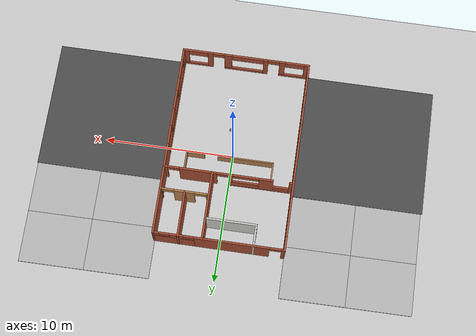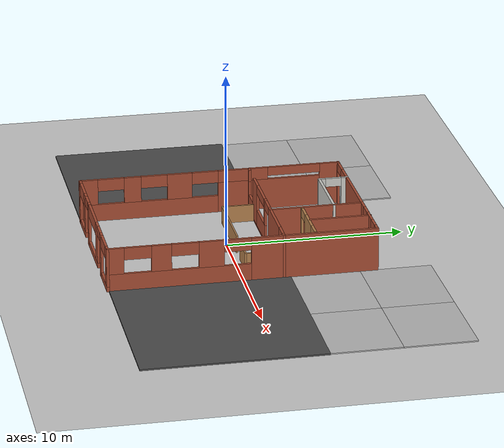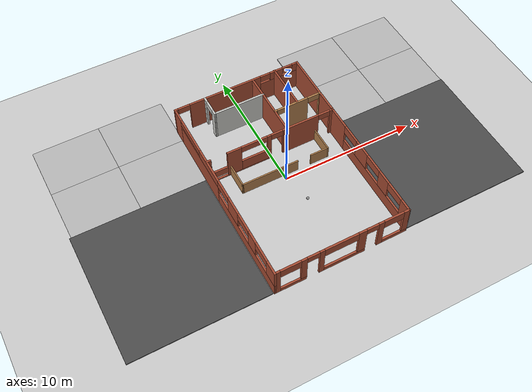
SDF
<sdf version="1.6">
 <world name="default">
  <model name="ground_plane">
   <static>1</static>
   <link name="link">
    <collision name="collision">
     <geometry><plane><normal>0 0 1</normal><size>100 100</size></plane></geometry>
     <surface><friction><ode><mu>100</mu><mu2>50</mu2></ode></friction></surface>
    </collision>
    <visual name="visual">
     <cast_shadows>0</cast_shadows>
     <geometry><plane><normal>0 0 1</normal><size>100 100</size></plane></geometry>
     <material>
      <script><uri>file://media/materials/scripts/gazebo.material</uri><name>Gazebo/Grey</name></script>
     </material>
    </visual>
   </link>
  </model>
  <light name="sun" type="directional">
   <pose>0 0 10 0 -0 0</pose>
   <diffuse>0.8 0.8 0.8 1</diffuse>
   <specular>0.2 0.2 0.2 1</specular>
   <attenuation>
    <range>1000</range>
    <constant>0.9</constant>
    <linear>0.01</linear>
    <quadratic>0.001</quadratic>
   </attenuation>
   <direction>-0.5 0.1 -0.9</direction>
  </light>
  <gravity>0 0 -9.8</gravity>
  <magnetic_field>6e-06 2.3e-05 -4.2e-05</magnetic_field>
  <atmosphere type="adiabatic"/>
  <physics name="default_physics" default="0" type="ode">
   <max_step_size>0.001</max_step_size>
   <real_time_factor>1</real_time_factor>
   <real_time_update_rate>1000</real_time_update_rate>
  </physics>
  <scene><ambient>0.4 0.4 0.4 1</ambient><background>0.7 0.7 0.7 1</background><shadows>1</shadows></scene>
  <spherical_coordinates>
   <surface_model>EARTH_WGS84</surface_model>
   <latitude_deg>0</latitude_deg>
   <longitude_deg>0</longitude_deg>
   <elevation>0</elevation>
   <heading_deg>0</heading_deg>
  </spherical_coordinates>
  <model name="pizzeria">
   <link name="Wall_1">
    <pose>-0.001821 7.41141 0 0 -0 1.3e-05</pose>
    <visual name="Wall_1_Visual_0">
     <pose>-4.85296 0 1.25 0 -0 0</pose>
     <geometry><box><size>0.294087 0.15 2.5</size></box></geometry>
     <material>
      <script><uri>file://media/materials/scripts/gazebo.material</uri><name>Gazebo/Bricks</name></script>
      <ambient>1 1 1 1</ambient>
     </material>
     <meta><layer>0</layer></meta>
    </visual>
    <collision name="Wall_1_Collision_0">
     <geometry><box><size>0.294087 0.15 2.5</size></box></geometry>
     <pose>-4.85296 0 1.25 0 -0 0</pose>
    </collision>
    <visual name="Wall_1_Visual_1">
     <pose>-0.985461 0 1.25 0 -0 0</pose>
     <geometry><box><size>5.6409 0.15 2.5</size></box></geometry>
     <material>
      <script><uri>file://media/materials/scripts/gazebo.material</uri><name>Gazebo/Bricks</name></script>
      <ambient>1 1 1 1</ambient>
     </material>
     <meta><layer>0</layer></meta>
    </visual>
    <collision name="Wall_1_Collision_1">
     <geometry><box><size>5.6409 0.15 2.5</size></box></geometry>
     <pose>-0.985461 0 1.25 0 -0 0</pose>
    </collision>
    <visual name="Wall_1_Visual_2">
     <pose>3.4175 0 0.9 0 -0 0</pose>
     <geometry><box><size>3.16501 0.15 1.8</size></box></geometry>
     <material>
      <script><uri>file://media/materials/scripts/gazebo.material</uri><name>Gazebo/Bricks</name></script>
      <ambient>1 1 1 1</ambient>
     </material>
     <meta><layer>0</layer></meta>
    </visual>
    <collision name="Wall_1_Collision_2">
     <geometry><box><size>3.16501 0.15 1.8</size></box></geometry>
     <pose>3.4175 0 0.9 0 -0 0</pose>
    </collision>
    <visual name="Wall_1_Visual_3">
     <pose>3.14938 0 2.15 0 -0 0</pose>
     <geometry><box><size>1.02879 0.15 0.7</size></box></geometry>
     <material>
      <script><uri>file://media/materials/scripts/gazebo.material</uri><name>Gazebo/Bricks</name></script>
      <ambient>1 1 1 1</ambient>
     </material>
     <meta><layer>0</layer></meta>
    </visual>
    <collision name="Wall_1_Collision_3">
     <geometry><box><size>1.02879 0.15 0.7</size></box></geometry>
     <pose>3.14938 0 2.15 0 -0 0</pose>
    </collision>
    <visual name="Wall_1_Visual_4">
     <pose>4.73189 0 2.15 0 -0 0</pose>
     <geometry><box><size>0.536223 0.15 0.7</size></box></geometry>
     <material>
      <script><uri>file://media/materials/scripts/gazebo.material</uri><name>Gazebo/Bricks</name></script>
      <ambient>1 1 1 1</ambient>
     </material>
     <meta><layer>0</layer></meta>
    </visual>
    <collision name="Wall_1_Collision_4">
     <geometry><box><size>0.536223 0.15 0.7</size></box></geometry>
     <pose>4.73189 0 2.15 0 -0 0</pose>
    </collision>
    <visual name="Wall_1_Visual_5">
     <pose>2.23499 0 2.25 0 -0 0</pose>
     <geometry><box><size>0.8 0.15 0.5</size></box></geometry>
     <material>
      <script><uri>file://media/materials/scripts/gazebo.material</uri><name>Gazebo/Bricks</name></script>
      <ambient>1 1 1 1</ambient>
     </material>
     <meta><layer>0</layer></meta>
    </visual>
    <collision name="Wall_1_Collision_5">
     <geometry><box><size>0.8 0.15 0.5</size></box></geometry>
     <pose>2.23499 0 2.25 0 -0 0</pose>
    </collision>
    <visual name="Wall_1_Visual_6">
     <pose>4.06378 0 2.25 0 -0 0</pose>
     <geometry><box><size>0.8 0.15 0.5</size></box></geometry>
     <material>
      <script><uri>file://media/materials/scripts/gazebo.material</uri><name>Gazebo/Bricks</name></script>
      <ambient>1 1 1 1</ambient>
     </material>
     <meta><layer>0</layer></meta>
    </visual>
    <collision name="Wall_1_Collision_6">
     <geometry><box><size>0.8 0.15 0.5</size></box></geometry>
     <pose>4.06378 0 2.25 0 -0 0</pose>
    </collision>
    <visual name="Wall_1_Visual_7">
     <pose>-4.25591 0 2.25 0 -0 0</pose>
     <geometry><box><size>0.9 0.15 0.5</size></box></geometry>
     <material>
      <script><uri>file://media/materials/scripts/gazebo.material</uri><name>Gazebo/Bricks</name></script>
      <ambient>1 1 1 1</ambient>
     </material>
     <meta><layer>0</layer></meta>
    </visual>
    <collision name="Wall_1_Collision_7">
     <geometry><box><size>0.9 0.15 0.5</size></box></geometry>
     <pose>-4.25591 0 2.25 0 -0 0</pose>
    </collision>
   </link>
   <link name="Wall_12">
    <pose>3.08232 4.00311 0 0 -0 0</pose>
    <visual name="Wall_12_Visual_0">
     <pose>-1.76453 0 1.25 0 -0 0</pose>
     <geometry><box><size>0.220946 0.15 2.5</size></box></geometry>
     <material>
      <script><uri>file://media/materials/scripts/gazebo.material</uri><name>Gazebo/Wood</name></script>
      <ambient>1 1 1 1</ambient>
     </material>
     <meta><layer>0</layer></meta>
    </visual>
    <collision name="Wall_12_Collision_0">
     <geometry><box><size>0.220946 0.15 2.5</size></box></geometry>
     <pose>-1.76453 0 1.25 0 -0 0</pose>
    </collision>
    <visual name="Wall_12_Visual_1">
     <pose>0.028771 0 1.25 0 -0 0</pose>
     <geometry><box><size>1.56565 0.15 2.5</size></box></geometry>
     <material>
      <script><uri>file://media/materials/scripts/gazebo.material</uri><name>Gazebo/Wood</name></script>
      <ambient>1 1 1 1</ambient>
     </material>
     <meta><layer>0</layer></meta>
    </visual>
    <collision name="Wall_12_Collision_1">
     <geometry><box><size>1.56565 0.15 2.5</size></box></geometry>
     <pose>0.028771 0 1.25 0 -0 0</pose>
    </collision>
    <visual name="Wall_12_Visual_2">
     <pose>1.7933 0 1.25 0 -0 0</pose>
     <geometry><box><size>0.163405 0.15 2.5</size></box></geometry>
     <material>
      <script><uri>file://media/materials/scripts/gazebo.material</uri><name>Gazebo/Wood</name></script>
      <ambient>1 1 1 1</ambient>
     </material>
     <meta><layer>0</layer></meta>
    </visual>
    <collision name="Wall_12_Collision_2">
     <geometry><box><size>0.163405 0.15 2.5</size></box></geometry>
     <pose>1.7933 0 1.25 0 -0 0</pose>
    </collision>
    <visual name="Wall_12_Visual_3">
     <pose>-1.20405 0 2.25 0 -0 0</pose>
     <geometry><box><size>0.9 0.15 0.5</size></box></geometry>
     <material>
      <script><uri>file://media/materials/scripts/gazebo.material</uri><name>Gazebo/Wood</name></script>
      <ambient>1 1 1 1</ambient>
     </material>
     <meta><layer>0</layer></meta>
    </visual>
    <collision name="Wall_12_Collision_3">
     <geometry><box><size>0.9 0.15 0.5</size></box></geometry>
     <pose>-1.20405 0 2.25 0 -0 0</pose>
    </collision>
    <visual name="Wall_12_Visual_4">
     <pose>1.2616 0 2.25 0 -0 0</pose>
     <geometry><box><size>0.9 0.15 0.5</size></box></geometry>
     <material>
      <script><uri>file://media/materials/scripts/gazebo.material</uri><name>Gazebo/Wood</name></script>
      <ambient>1 1 1 1</ambient>
     </material>
     <meta><layer>0</layer></meta>
    </visual>
    <collision name="Wall_12_Collision_4">
     <geometry><box><size>0.9 0.15 0.5</size></box></geometry>
     <pose>1.2616 0 2.25 0 -0 0</pose>
    </collision>
   </link>
   <link name="Wall_14">
    <collision name="Wall_14_Collision">
     <geometry><box><size>3.5 0.15 2.5</size></box></geometry>
     <pose>0 0 1.25 0 -0 0</pose>
    </collision>
    <visual name="Wall_14_Visual">
     <pose>0 0 1.25 0 -0 0</pose>
     <geometry><box><size>3.5 0.15 2.5</size></box></geometry>
     <material>
      <script><uri>file://media/materials/scripts/gazebo.material</uri><name>Gazebo/Bricks</name></script>
      <ambient>1 1 1 1</ambient>
     </material>
     <meta><layer>0</layer></meta>
    </visual>
    <pose>3.05997 5.76366 0 0 -0 1.5708</pose>
   </link>
   <link name="Wall_18">
    <collision name="Wall_18_Collision">
     <geometry><box><size>1.95 0.1 1</size></box></geometry>
     <pose>0 0 0.5 0 -0 0</pose>
    </collision>
    <visual name="Wall_18_Visual">
     <pose>0 0 0.5 0 -0 0</pose>
     <geometry><box><size>1.95 0.1 1</size></box></geometry>
     <material>
      <script><uri>file://media/materials/scripts/gazebo.material</uri><name>Gazebo/Wood</name></script>
      <ambient>1 1 1 1</ambient>
     </material>
     <meta><layer>0</layer></meta>
    </visual>
    <pose>-3.20183 1.30439 0 0 0 -1.5708</pose>
   </link>
   <link name="Wall_19">
    <collision name="Wall_19_Collision">
     <geometry><box><size>4.377 0.1 1</size></box></geometry>
     <pose>0 0 0.5 0 -0 0</pose>
    </collision>
    <visual name="Wall_19_Visual">
     <pose>0 0 0.5 0 -0 0</pose>
     <geometry><box><size>4.377 0.1 1</size></box></geometry>
     <material>
      <script><uri>file://media/materials/scripts/gazebo.material</uri><name>Gazebo/Wood</name></script>
      <ambient>1 1 1 1</ambient>
     </material>
     <meta><layer>0</layer></meta>
    </visual>
    <pose>-1.06333 0.38243 0 0 -0 0.001422</pose>
   </link>
   <link name="Wall_2">
    <pose>4.92317 -0.013529 0 0 0 -1.5708</pose>
    <visual name="Wall_2_Visual_0">
     <pose>-3.97755 0 1.25 0 -0 0</pose>
     <geometry><box><size>7.04491 0.15 2.5</size></box></geometry>
     <material>
      <script><uri>file://media/materials/scripts/gazebo.material</uri><name>Gazebo/Bricks</name></script>
      <ambient>1 1 1 1</ambient>
     </material>
     <meta><layer>0</layer></meta>
    </visual>
    <collision name="Wall_2_Collision_0">
     <geometry><box><size>7.04491 0.15 2.5</size></box></geometry>
     <pose>-3.97755 0 1.25 0 -0 0</pose>
    </collision>
    <visual name="Wall_2_Visual_1">
     <pose>3.52245 0 0.5 0 -0 0</pose>
     <geometry><box><size>7.95509 0.15 1</size></box></geometry>
     <material>
      <script><uri>file://media/materials/scripts/gazebo.material</uri><name>Gazebo/Bricks</name></script>
      <ambient>1 1 1 1</ambient>
     </material>
     <meta><layer>0</layer></meta>
    </visual>
    <collision name="Wall_2_Collision_1">
     <geometry><box><size>7.95509 0.15 1</size></box></geometry>
     <pose>3.52245 0 0.5 0 -0 0</pose>
    </collision>
    <visual name="Wall_2_Visual_2">
     <pose>1.7395 0 1.75 0 -0 0</pose>
     <geometry><box><size>1.38918 0.15 1.5</size></box></geometry>
     <material>
      <script><uri>file://media/materials/scripts/gazebo.material</uri><name>Gazebo/Bricks</name></script>
      <ambient>1 1 1 1</ambient>
     </material>
     <meta><layer>0</layer></meta>
    </visual>
    <collision name="Wall_2_Collision_2">
     <geometry><box><size>1.38918 0.15 1.5</size></box></geometry>
     <pose>1.7395 0 1.75 0 -0 0</pose>
    </collision>
    <visual name="Wall_2_Visual_3">
     <pose>4.48422 0 1.75 0 -0 0</pose>
     <geometry><box><size>1.10026 0.15 1.5</size></box></geometry>
     <material>
      <script><uri>file://media/materials/scripts/gazebo.material</uri><name>Gazebo/Bricks</name></script>
      <ambient>1 1 1 1</ambient>
     </material>
     <meta><layer>0</layer></meta>
    </visual>
    <collision name="Wall_2_Collision_3">
     <geometry><box><size>1.10026 0.15 1.5</size></box></geometry>
     <pose>4.48422 0 1.75 0 -0 0</pose>
    </collision>
    <visual name="Wall_2_Visual_4">
     <pose>7.01717 0 1.75 0 -0 0</pose>
     <geometry><box><size>0.965653 0.15 1.5</size></box></geometry>
     <material>
      <script><uri>file://media/materials/scripts/gazebo.material</uri><name>Gazebo/Bricks</name></script>
      <ambient>1 1 1 1</ambient>
     </material>
     <meta><layer>0</layer></meta>
    </visual>
    <collision name="Wall_2_Collision_4">
     <geometry><box><size>0.965653 0.15 1.5</size></box></geometry>
     <pose>7.01717 0 1.75 0 -0 0</pose>
    </collision>
    <visual name="Wall_2_Visual_5">
     <pose>0.294909 0 2.15 0 -0 0</pose>
     <geometry><box><size>1.5 0.15 0.7</size></box></geometry>
     <material>
      <script><uri>file://media/materials/scripts/gazebo.material</uri><name>Gazebo/Bricks</name></script>
      <ambient>1 1 1 1</ambient>
     </material>
     <meta><layer>0</layer></meta>
    </visual>
    <collision name="Wall_2_Collision_5">
     <geometry><box><size>1.5 0.15 0.7</size></box></geometry>
     <pose>0.294909 0 2.15 0 -0 0</pose>
    </collision>
    <visual name="Wall_2_Visual_6">
     <pose>3.18409 0 2.15 0 -0 0</pose>
     <geometry><box><size>1.5 0.15 0.7</size></box></geometry>
     <material>
      <script><uri>file://media/materials/scripts/gazebo.material</uri><name>Gazebo/Bricks</name></script>
      <ambient>1 1 1 1</ambient>
     </material>
     <meta><layer>0</layer></meta>
    </visual>
    <collision name="Wall_2_Collision_6">
     <geometry><box><size>1.5 0.15 0.7</size></box></geometry>
     <pose>3.18409 0 2.15 0 -0 0</pose>
    </collision>
    <visual name="Wall_2_Visual_7">
     <pose>5.78435 0 2.15 0 -0 0</pose>
     <geometry><box><size>1.5 0.15 0.7</size></box></geometry>
     <material>
      <script><uri>file://media/materials/scripts/gazebo.material</uri><name>Gazebo/Bricks</name></script>
      <ambient>1 1 1 1</ambient>
     </material>
     <meta><layer>0</layer></meta>
    </visual>
    <collision name="Wall_2_Collision_7">
     <geometry><box><size>1.5 0.15 0.7</size></box></geometry>
     <pose>5.78435 0 2.15 0 -0 0</pose>
    </collision>
   </link>
   <link name="Wall_25">
    <collision name="Wall_25_Collision">
     <geometry><box><size>1.45032 0.1 1</size></box></geometry>
     <pose>0 0 0.5 0 -0 0</pose>
    </collision>
    <visual name="Wall_25_Visual">
     <pose>0 0 0.5 0 -0 0</pose>
     <geometry><box><size>1.45032 0.1 1</size></box></geometry>
     <material>
      <script><uri>file://media/materials/scripts/gazebo.material</uri><name>Gazebo/Wood</name></script>
      <ambient>1 1 1 1</ambient>
     </material>
     <meta><layer>0</layer></meta>
    </visual>
    <pose>2.85017 0.385472 0 0 -0 0</pose>
   </link>
   <link name="Wall_26">
    <collision name="Wall_26_Collision">
     <geometry><box><size>1.95008 0.1 1</size></box></geometry>
     <pose>0 0 0.5 0 -0 0</pose>
    </collision>
    <visual name="Wall_26_Visual">
     <pose>0 0 0.5 0 -0 0</pose>
     <geometry><box><size>1.95008 0.1 1</size></box></geometry>
     <material>
      <script><uri>file://media/materials/scripts/gazebo.material</uri><name>Gazebo/Wood</name></script>
      <ambient>1 1 1 1</ambient>
     </material>
     <meta><layer>0</layer></meta>
    </visual>
    <pose>3.52517 1.31047 0 0 -0 1.5708</pose>
   </link>
   <link name="Wall_33">
    <pose>-2.60257 6.61524 0 0 0 -1.5708</pose>
    <visual name="Wall_33_Visual_0">
     <pose>-0.662657 0 1.25 0 -0 0</pose>
     <geometry><box><size>0.424686 0.15 2.5</size></box></geometry>
     <material>
      <script><uri>file://media/materials/scripts/gazebo.material</uri><name>Gazebo/CeilingTiled</name></script>
      <ambient>1 1 1 1</ambient>
     </material>
     <meta><layer>0</layer></meta>
    </visual>
    <collision name="Wall_33_Collision_0">
     <geometry><box><size>0.424686 0.15 2.5</size></box></geometry>
     <pose>-0.662657 0 1.25 0 -0 0</pose>
    </collision>
    <visual name="Wall_33_Visual_1">
     <pose>0.662343 0 1.25 0 -0 0</pose>
     <geometry><box><size>0.425314 0.15 2.5</size></box></geometry>
     <material>
      <script><uri>file://media/materials/scripts/gazebo.material</uri><name>Gazebo/CeilingTiled</name></script>
      <ambient>1 1 1 1</ambient>
     </material>
     <meta><layer>0</layer></meta>
    </visual>
    <collision name="Wall_33_Collision_1">
     <geometry><box><size>0.425314 0.15 2.5</size></box></geometry>
     <pose>0.662343 0 1.25 0 -0 0</pose>
    </collision>
    <visual name="Wall_33_Visual_2">
     <pose>-0.000314 0 2.25 0 -0 0</pose>
     <geometry><box><size>0.9 0.15 0.5</size></box></geometry>
     <material>
      <script><uri>file://media/materials/scripts/gazebo.material</uri><name>Gazebo/CeilingTiled</name></script>
      <ambient>1 1 1 1</ambient>
     </material>
     <meta><layer>0</layer></meta>
    </visual>
    <collision name="Wall_33_Collision_2">
     <geometry><box><size>0.9 0.15 0.5</size></box></geometry>
     <pose>-0.000314 0 2.25 0 -0 0</pose>
    </collision>
   </link>
   <link name="Wall_34">
    <collision name="Wall_34_Collision">
     <geometry><box><size>4 0.15 2.5</size></box></geometry>
     <pose>0 0 1.25 0 -0 0</pose>
    </collision>
    <visual name="Wall_34_Visual">
     <pose>0 0 1.25 0 -0 0</pose>
     <geometry><box><size>4 0.15 2.5</size></box></geometry>
     <material>
      <script><uri>file://media/materials/scripts/gazebo.material</uri><name>Gazebo/CeilingTiled</name></script>
      <ambient>1 1 1 1</ambient>
     </material>
     <meta><layer>0</layer></meta>
    </visual>
    <pose>-0.67757 5.81524 0 0 -0 0</pose>
   </link>
   <link name="Wall_4">
    <pose>-4.92681 -0.013655 0 0 0 -1.5708</pose>
    <visual name="Wall_4_Visual_0">
     <pose>-6.91593 0 1.25 0 -0 0</pose>
     <geometry><box><size>1.16814 0.15 2.5</size></box></geometry>
     <material>
      <script><uri>file://media/materials/scripts/gazebo.material</uri><name>Gazebo/Bricks</name></script>
      <ambient>1 1 1 1</ambient>
     </material>
     <meta><layer>0</layer></meta>
    </visual>
    <collision name="Wall_4_Collision_0">
     <geometry><box><size>1.16814 0.15 2.5</size></box></geometry>
     <pose>-6.91593 0 1.25 0 -0 0</pose>
    </collision>
    <visual name="Wall_4_Visual_1">
     <pose>-3.39354 0 0.9 0 -0 0</pose>
     <geometry><box><size>5.87664 0.15 1.8</size></box></geometry>
     <material>
      <script><uri>file://media/materials/scripts/gazebo.material</uri><name>Gazebo/Bricks</name></script>
      <ambient>1 1 1 1</ambient>
     </material>
     <meta><layer>0</layer></meta>
    </visual>
    <collision name="Wall_4_Collision_1">
     <geometry><box><size>5.87664 0.15 1.8</size></box></geometry>
     <pose>-3.39354 0 0.9 0 -0 0</pose>
    </collision>
    <visual name="Wall_4_Visual_2">
     <pose>3.52239 0 0.5 0 -0 0</pose>
     <geometry><box><size>7.95522 0.15 1</size></box></geometry>
     <material>
      <script><uri>file://media/materials/scripts/gazebo.material</uri><name>Gazebo/Bricks</name></script>
      <ambient>1 1 1 1</ambient>
     </material>
     <meta><layer>0</layer></meta>
    </visual>
    <collision name="Wall_4_Collision_2">
     <geometry><box><size>7.95522 0.15 1</size></box></geometry>
     <pose>3.52239 0 0.5 0 -0 0</pose>
    </collision>
    <visual name="Wall_4_Visual_3">
     <pose>1.75542 0 1.75 0 -0 0</pose>
     <geometry><box><size>1.42128 0.15 1.5</size></box></geometry>
     <material>
      <script><uri>file://media/materials/scripts/gazebo.material</uri><name>Gazebo/Bricks</name></script>
      <ambient>1 1 1 1</ambient>
     </material>
     <meta><layer>0</layer></meta>
    </visual>
    <collision name="Wall_4_Collision_3">
     <geometry><box><size>1.42128 0.15 1.5</size></box></geometry>
     <pose>1.75542 0 1.75 0 -0 0</pose>
    </collision>
    <visual name="Wall_4_Visual_4">
     <pose>4.45199 0 1.75 0 -0 0</pose>
     <geometry><box><size>0.971851 0.15 1.5</size></box></geometry>
     <material>
      <script><uri>file://media/materials/scripts/gazebo.material</uri><name>Gazebo/Bricks</name></script>
      <ambient>1 1 1 1</ambient>
     </material>
     <meta><layer>0</layer></meta>
    </visual>
    <collision name="Wall_4_Collision_4">
     <geometry><box><size>0.971851 0.15 1.5</size></box></geometry>
     <pose>4.45199 0 1.75 0 -0 0</pose>
    </collision>
    <visual name="Wall_4_Visual_5">
     <pose>6.96896 0 1.75 0 -0 0</pose>
     <geometry><box><size>1.06209 0.15 1.5</size></box></geometry>
     <material>
      <script><uri>file://media/materials/scripts/gazebo.material</uri><name>Gazebo/Bricks</name></script>
      <ambient>1 1 1 1</ambient>
     </material>
     <meta><layer>0</layer></meta>
    </visual>
    <collision name="Wall_4_Collision_5">
     <geometry><box><size>1.06209 0.15 1.5</size></box></geometry>
     <pose>6.96896 0 1.75 0 -0 0</pose>
    </collision>
    <visual name="Wall_4_Visual_6">
     <pose>-1.89354 0 2.15 0 -0 0</pose>
     <geometry><box><size>2.87664 0.15 0.7</size></box></geometry>
     <material>
      <script><uri>file://media/materials/scripts/gazebo.material</uri><name>Gazebo/Bricks</name></script>
      <ambient>1 1 1 1</ambient>
     </material>
     <meta><layer>0</layer></meta>
    </visual>
    <collision name="Wall_4_Collision_6">
     <geometry><box><size>2.87664 0.15 0.7</size></box></geometry>
     <pose>-1.89354 0 2.15 0 -0 0</pose>
    </collision>
    <visual name="Wall_4_Visual_7">
     <pose>3.21606 0 2.15 0 -0 0</pose>
     <geometry><box><size>1.5 0.15 0.7</size></box></geometry>
     <material>
      <script><uri>file://media/materials/scripts/gazebo.material</uri><name>Gazebo/Bricks</name></script>
      <ambient>1 1 1 1</ambient>
     </material>
     <meta><layer>0</layer></meta>
    </visual>
    <collision name="Wall_4_Collision_7">
     <geometry><box><size>1.5 0.15 0.7</size></box></geometry>
     <pose>3.21606 0 2.15 0 -0 0</pose>
    </collision>
    <visual name="Wall_4_Visual_8">
     <pose>5.68791 0 2.15 0 -0 0</pose>
     <geometry><box><size>1.5 0.15 0.7</size></box></geometry>
     <material>
      <script><uri>file://media/materials/scripts/gazebo.material</uri><name>Gazebo/Bricks</name></script>
      <ambient>1 1 1 1</ambient>
     </material>
     <meta><layer>0</layer></meta>
    </visual>
    <collision name="Wall_4_Collision_8">
     <geometry><box><size>1.5 0.15 0.7</size></box></geometry>
     <pose>5.68791 0 2.15 0 -0 0</pose>
    </collision>
    <visual name="Wall_4_Visual_9">
     <pose>0.294783 0 2.15 0 -0 0</pose>
     <geometry><box><size>1.5 0.15 0.7</size></box></geometry>
     <material>
      <script><uri>file://media/materials/scripts/gazebo.material</uri><name>Gazebo/Bricks</name></script>
      <ambient>1 1 1 1</ambient>
     </material>
     <meta><layer>0</layer></meta>
    </visual>
    <collision name="Wall_4_Collision_9">
     <geometry><box><size>1.5 0.15 0.7</size></box></geometry>
     <pose>0.294783 0 2.15 0 -0 0</pose>
    </collision>
    <visual name="Wall_4_Visual_10">
     <pose>-4.83186 0 2.25 0 -0 0</pose>
     <geometry><box><size>3 0.15 0.5</size></box></geometry>
     <material>
      <script><uri>file://media/materials/scripts/gazebo.material</uri><name>Gazebo/Bricks</name></script>
      <ambient>1 1 1 1</ambient>
     </material>
     <meta><layer>0</layer></meta>
    </visual>
    <collision name="Wall_4_Collision_10">
     <geometry><box><size>3 0.15 0.5</size></box></geometry>
     <pose>-4.83186 0 2.25 0 -0 0</pose>
    </collision>
   </link>
   <link name="Wall_5">
    <pose>-0.001821 -7.43859 0 0 -0 1.3e-05</pose>
    <visual name="Wall_5_Visual_0">
     <pose>-4.78046 0 1.25 0 -0 0</pose>
     <geometry><box><size>0.439056 0.15 2.5</size></box></geometry>
     <material>
      <script><uri>file://media/materials/scripts/gazebo.material</uri><name>Gazebo/Bricks</name></script>
      <ambient>1 1 1 1</ambient>
     </material>
     <meta><layer>0</layer></meta>
    </visual>
    <collision name="Wall_5_Collision_0">
     <geometry><box><size>0.439056 0.15 2.5</size></box></geometry>
     <pose>-4.78046 0 1.25 0 -0 0</pose>
    </collision>
    <visual name="Wall_5_Visual_1">
     <pose>-1.55053 0 1.25 0 -0 0</pose>
     <geometry><box><size>0.359037 0.15 2.5</size></box></geometry>
     <material>
      <script><uri>file://media/materials/scripts/gazebo.material</uri><name>Gazebo/Bricks</name></script>
      <ambient>1 1 1 1</ambient>
     </material>
     <meta><layer>0</layer></meta>
    </visual>
    <collision name="Wall_5_Collision_1">
     <geometry><box><size>0.359037 0.15 2.5</size></box></geometry>
     <pose>-1.55053 0 1.25 0 -0 0</pose>
    </collision>
    <visual name="Wall_5_Visual_2">
     <pose>2.82889 0 1.25 0 -0 0</pose>
     <geometry><box><size>0.410342 0.15 2.5</size></box></geometry>
     <material>
      <script><uri>file://media/materials/scripts/gazebo.material</uri><name>Gazebo/Bricks</name></script>
      <ambient>1 1 1 1</ambient>
     </material>
     <meta><layer>0</layer></meta>
    </visual>
    <collision name="Wall_5_Collision_2">
     <geometry><box><size>0.410342 0.15 2.5</size></box></geometry>
     <pose>2.82889 0 1.25 0 -0 0</pose>
    </collision>
    <visual name="Wall_5_Visual_3">
     <pose>-3.59549 0 0.15 0 -0 0</pose>
     <geometry><box><size>1.93089 0.15 0.3</size></box></geometry>
     <material>
      <script><uri>file://media/materials/scripts/gazebo.material</uri><name>Gazebo/Bricks</name></script>
      <ambient>1 1 1 1</ambient>
     </material>
     <meta><layer>0</layer></meta>
    </visual>
    <collision name="Wall_5_Collision_3">
     <geometry><box><size>1.93089 0.15 0.3</size></box></geometry>
     <pose>-3.59549 0 0.15 0 -0 0</pose>
    </collision>
    <visual name="Wall_5_Visual_4">
     <pose>0.176355 0 0.15 0 -0 0</pose>
     <geometry><box><size>3.09473 0.15 0.3</size></box></geometry>
     <material>
      <script><uri>file://media/materials/scripts/gazebo.material</uri><name>Gazebo/Bricks</name></script>
      <ambient>1 1 1 1</ambient>
     </material>
     <meta><layer>0</layer></meta>
    </visual>
    <collision name="Wall_5_Collision_4">
     <geometry><box><size>3.09473 0.15 0.3</size></box></geometry>
     <pose>0.176355 0 0.15 0 -0 0</pose>
    </collision>
    <visual name="Wall_5_Visual_5">
     <pose>4.01703 0 0.15 0 -0 0</pose>
     <geometry><box><size>1.96593 0.15 0.3</size></box></geometry>
     <material>
      <script><uri>file://media/materials/scripts/gazebo.material</uri><name>Gazebo/Bricks</name></script>
      <ambient>1 1 1 1</ambient>
     </material>
     <meta><layer>0</layer></meta>
    </visual>
    <collision name="Wall_5_Collision_5">
     <geometry><box><size>1.96593 0.15 0.3</size></box></geometry>
     <pose>4.01703 0 0.15 0 -0 0</pose>
    </collision>
    <visual name="Wall_5_Visual_6">
     <pose>-2.84549 0 1.4 0 -0 0</pose>
     <geometry><box><size>0.430889 0.15 2.2</size></box></geometry>
     <material>
      <script><uri>file://media/materials/scripts/gazebo.material</uri><name>Gazebo/Bricks</name></script>
      <ambient>1 1 1 1</ambient>
     </material>
     <meta><layer>0</layer></meta>
    </visual>
    <collision name="Wall_5_Collision_6">
     <geometry><box><size>0.430889 0.15 2.2</size></box></geometry>
     <pose>-2.84549 0 1.4 0 -0 0</pose>
    </collision>
    <visual name="Wall_5_Visual_7">
     <pose>-2.84549 0 1.4 0 -0 0</pose>
     <geometry><box><size>0.430889 0.15 2.2</size></box></geometry>
     <material>
      <script><uri>file://media/materials/scripts/gazebo.material</uri><name>Gazebo/Bricks</name></script>
      <ambient>1 1 1 1</ambient>
     </material>
     <meta><layer>0</layer></meta>
    </visual>
    <collision name="Wall_5_Collision_7">
     <geometry><box><size>0.430889 0.15 2.2</size></box></geometry>
     <pose>-2.84549 0 1.4 0 -0 0</pose>
    </collision>
    <visual name="Wall_5_Visual_8">
     <pose>1.42636 0 1.4 0 -0 0</pose>
     <geometry><box><size>0.594728 0.15 2.2</size></box></geometry>
     <material>
      <script><uri>file://media/materials/scripts/gazebo.material</uri><name>Gazebo/Bricks</name></script>
      <ambient>1 1 1 1</ambient>
     </material>
     <meta><layer>0</layer></meta>
    </visual>
    <collision name="Wall_5_Collision_8">
     <geometry><box><size>0.594728 0.15 2.2</size></box></geometry>
     <pose>1.42636 0 1.4 0 -0 0</pose>
    </collision>
    <visual name="Wall_5_Visual_9">
     <pose>1.42636 0 1.4 0 -0 0</pose>
     <geometry><box><size>0.594728 0.15 2.2</size></box></geometry>
     <material>
      <script><uri>file://media/materials/scripts/gazebo.material</uri><name>Gazebo/Bricks</name></script>
      <ambient>1 1 1 1</ambient>
     </material>
     <meta><layer>0</layer></meta>
    </visual>
    <collision name="Wall_5_Collision_9">
     <geometry><box><size>0.594728 0.15 2.2</size></box></geometry>
     <pose>1.42636 0 1.4 0 -0 0</pose>
    </collision>
    <visual name="Wall_5_Visual_10">
     <pose>4.76703 0 1.4 0 -0 0</pose>
     <geometry><box><size>0.46593 0.15 2.2</size></box></geometry>
     <material>
      <script><uri>file://media/materials/scripts/gazebo.material</uri><name>Gazebo/Bricks</name></script>
      <ambient>1 1 1 1</ambient>
     </material>
     <meta><layer>0</layer></meta>
    </visual>
    <collision name="Wall_5_Collision_10">
     <geometry><box><size>0.46593 0.15 2.2</size></box></geometry>
     <pose>4.76703 0 1.4 0 -0 0</pose>
    </collision>
    <visual name="Wall_5_Visual_11">
     <pose>-3.81094 0 2.15 0 -0 0</pose>
     <geometry><box><size>1.5 0.15 0.7</size></box></geometry>
     <material>
      <script><uri>file://media/materials/scripts/gazebo.material</uri><name>Gazebo/Bricks</name></script>
      <ambient>1 1 1 1</ambient>
     </material>
     <meta><layer>0</layer></meta>
    </visual>
    <collision name="Wall_5_Collision_11">
     <geometry><box><size>1.5 0.15 0.7</size></box></geometry>
     <pose>-3.81094 0 2.15 0 -0 0</pose>
    </collision>
    <visual name="Wall_5_Visual_12">
     <pose>-0.121009 0 2.15 0 -0 0</pose>
     <geometry><box><size>2.5 0.15 0.7</size></box></geometry>
     <material>
      <script><uri>file://media/materials/scripts/gazebo.material</uri><name>Gazebo/Bricks</name></script>
      <ambient>1 1 1 1</ambient>
     </material>
     <meta><layer>0</layer></meta>
    </visual>
    <collision name="Wall_5_Collision_12">
     <geometry><box><size>2.5 0.15 0.7</size></box></geometry>
     <pose>-0.121009 0 2.15 0 -0 0</pose>
    </collision>
    <visual name="Wall_5_Visual_13">
     <pose>3.78406 0 2.15 0 -0 0</pose>
     <geometry><box><size>1.5 0.15 0.7</size></box></geometry>
     <material>
      <script><uri>file://media/materials/scripts/gazebo.material</uri><name>Gazebo/Bricks</name></script>
      <ambient>1 1 1 1</ambient>
     </material>
     <meta><layer>0</layer></meta>
    </visual>
    <collision name="Wall_5_Collision_13">
     <geometry><box><size>1.5 0.15 0.7</size></box></geometry>
     <pose>3.78406 0 2.15 0 -0 0</pose>
    </collision>
    <visual name="Wall_5_Visual_14">
     <pose>-2.18005 0 2.25 0 -0 0</pose>
     <geometry><box><size>0.9 0.15 0.5</size></box></geometry>
     <material>
      <script><uri>file://media/materials/scripts/gazebo.material</uri><name>Gazebo/Bricks</name></script>
      <ambient>1 1 1 1</ambient>
     </material>
     <meta><layer>0</layer></meta>
    </visual>
    <collision name="Wall_5_Collision_14">
     <geometry><box><size>0.9 0.15 0.5</size></box></geometry>
     <pose>-2.18005 0 2.25 0 -0 0</pose>
    </collision>
    <visual name="Wall_5_Visual_15">
     <pose>-2.18005 0 2.25 0 -0 0</pose>
     <geometry><box><size>0.9 0.15 0.5</size></box></geometry>
     <material>
      <script><uri>file://media/materials/scripts/gazebo.material</uri><name>Gazebo/Bricks</name></script>
      <ambient>1 1 1 1</ambient>
     </material>
     <meta><layer>0</layer></meta>
    </visual>
    <collision name="Wall_5_Collision_15">
     <geometry><box><size>0.9 0.15 0.5</size></box></geometry>
     <pose>-2.18005 0 2.25 0 -0 0</pose>
    </collision>
    <visual name="Wall_5_Visual_16">
     <pose>2.17372 0 2.25 0 -0 0</pose>
     <geometry><box><size>0.9 0.15 0.5</size></box></geometry>
     <material>
      <script><uri>file://media/materials/scripts/gazebo.material</uri><name>Gazebo/Bricks</name></script>
      <ambient>1 1 1 1</ambient>
     </material>
     <meta><layer>0</layer></meta>
    </visual>
    <collision name="Wall_5_Collision_16">
     <geometry><box><size>0.9 0.15 0.5</size></box></geometry>
     <pose>2.17372 0 2.25 0 -0 0</pose>
    </collision>
    <visual name="Wall_5_Visual_17">
     <pose>2.17372 0 2.25 0 -0 0</pose>
     <geometry><box><size>0.9 0.15 0.5</size></box></geometry>
     <material>
      <script><uri>file://media/materials/scripts/gazebo.material</uri><name>Gazebo/Bricks</name></script>
      <ambient>1 1 1 1</ambient>
     </material>
     <meta><layer>0</layer></meta>
    </visual>
    <collision name="Wall_5_Collision_17">
     <geometry><box><size>0.9 0.15 0.5</size></box></geometry>
     <pose>2.17372 0 2.25 0 -0 0</pose>
    </collision>
   </link>
   <link name="Wall_7">
    <pose>0.001822 2.23693 0 0 -0 0</pose>
    <visual name="Wall_7_Visual_0">
     <pose>-4.81045 0 1.25 0 -0 0</pose>
     <geometry><box><size>0.379103 0.15 2.5</size></box></geometry>
     <material>
      <script><uri>file://media/materials/scripts/gazebo.material</uri><name>Gazebo/Bricks</name></script>
      <ambient>1 1 1 1</ambient>
     </material>
     <meta><layer>0</layer></meta>
    </visual>
    <collision name="Wall_7_Collision_0">
     <geometry><box><size>0.379103 0.15 2.5</size></box></geometry>
     <pose>-4.81045 0 1.25 0 -0 0</pose>
    </collision>
    <visual name="Wall_7_Visual_1">
     <pose>2.31837 0 1.25 0 -0 0</pose>
     <geometry><box><size>2.87624 0.15 2.5</size></box></geometry>
     <material>
      <script><uri>file://media/materials/scripts/gazebo.material</uri><name>Gazebo/Bricks</name></script>
      <ambient>1 1 1 1</ambient>
     </material>
     <meta><layer>0</layer></meta>
    </visual>
    <collision name="Wall_7_Collision_1">
     <geometry><box><size>2.87624 0.15 2.5</size></box></geometry>
     <pose>2.31837 0 1.25 0 -0 0</pose>
    </collision>
    <visual name="Wall_7_Visual_2">
     <pose>4.82824 0 1.25 0 -0 0</pose>
     <geometry><box><size>0.343514 0.15 2.5</size></box></geometry>
     <material>
      <script><uri>file://media/materials/scripts/gazebo.material</uri><name>Gazebo/Bricks</name></script>
      <ambient>1 1 1 1</ambient>
     </material>
     <meta><layer>0</layer></meta>
    </visual>
    <collision name="Wall_7_Collision_2">
     <geometry><box><size>0.343514 0.15 2.5</size></box></geometry>
     <pose>4.82824 0 1.25 0 -0 0</pose>
    </collision>
    <visual name="Wall_7_Visual_3">
     <pose>-4.61934 0 0.5 0 -0 0</pose>
     <geometry><box><size>0.003107 0.15 1</size></box></geometry>
     <material>
      <script><uri>file://media/materials/scripts/gazebo.material</uri><name>Gazebo/Bricks</name></script>
      <ambient>1 1 1 1</ambient>
     </material>
     <meta><layer>0</layer></meta>
    </visual>
    <collision name="Wall_7_Collision_3">
     <geometry><box><size>0.003107 0.15 1</size></box></geometry>
     <pose>-4.61934 0 0.5 0 -0 0</pose>
    </collision>
    <visual name="Wall_7_Visual_4">
     <pose>-2.31877 0 0.05 0 -0 0</pose>
     <geometry><box><size>4.59803 0.15 0.1</size></box></geometry>
     <material>
      <script><uri>file://media/materials/scripts/gazebo.material</uri><name>Gazebo/Bricks</name></script>
      <ambient>1 1 1 1</ambient>
     </material>
     <meta><layer>0</layer></meta>
    </visual>
    <collision name="Wall_7_Collision_4">
     <geometry><box><size>4.59803 0.15 0.1</size></box></geometry>
     <pose>-2.31877 0 0.05 0 -0 0</pose>
    </collision>
    <visual name="Wall_7_Visual_5">
     <pose>-2.87174 0 1.3 0 -0 0</pose>
     <geometry><box><size>1.0921 0.15 2.4</size></box></geometry>
     <material>
      <script><uri>file://media/materials/scripts/gazebo.material</uri><name>Gazebo/Bricks</name></script>
      <ambient>1 1 1 1</ambient>
     </material>
     <meta><layer>0</layer></meta>
    </visual>
    <collision name="Wall_7_Collision_5">
     <geometry><box><size>1.0921 0.15 2.4</size></box></geometry>
     <pose>-2.87174 0 1.3 0 -0 0</pose>
    </collision>
    <visual name="Wall_7_Visual_6">
     <pose>-1.17273 0 0.55 0 -0 0</pose>
     <geometry><box><size>2.30594 0.15 0.9</size></box></geometry>
     <material>
      <script><uri>file://media/materials/scripts/gazebo.material</uri><name>Gazebo/Bricks</name></script>
      <ambient>1 1 1 1</ambient>
     </material>
     <meta><layer>0</layer></meta>
    </visual>
    <collision name="Wall_7_Collision_6">
     <geometry><box><size>2.30594 0.15 0.9</size></box></geometry>
     <pose>-1.17273 0 0.55 0 -0 0</pose>
    </collision>
    <visual name="Wall_7_Visual_7">
     <pose>-4.01779 0 0.7 0 -0 0</pose>
     <geometry><box><size>1.2 0.15 0.6</size></box></geometry>
     <material>
      <script><uri>file://media/materials/scripts/gazebo.material</uri><name>Gazebo/Bricks</name></script>
      <ambient>1 1 1 1</ambient>
     </material>
     <meta><layer>0</layer></meta>
    </visual>
    <collision name="Wall_7_Collision_7">
     <geometry><box><size>1.2 0.15 0.6</size></box></geometry>
     <pose>-4.01779 0 0.7 0 -0 0</pose>
    </collision>
    <visual name="Wall_7_Visual_8">
     <pose>-0.172726 0 1.75 0 -0 0</pose>
     <geometry><box><size>0.305938 0.15 1.5</size></box></geometry>
     <material>
      <script><uri>file://media/materials/scripts/gazebo.material</uri><name>Gazebo/Bricks</name></script>
      <ambient>1 1 1 1</ambient>
     </material>
     <meta><layer>0</layer></meta>
    </visual>
    <collision name="Wall_7_Collision_8">
     <geometry><box><size>0.305938 0.15 1.5</size></box></geometry>
     <pose>-0.172726 0 1.75 0 -0 0</pose>
    </collision>
    <visual name="Wall_7_Visual_9">
     <pose>-3.41934 0 1.75 0 -0 0</pose>
     <geometry><box><size>0.003107 0.15 1.5</size></box></geometry>
     <material>
      <script><uri>file://media/materials/scripts/gazebo.material</uri><name>Gazebo/Bricks</name></script>
      <ambient>1 1 1 1</ambient>
     </material>
     <meta><layer>0</layer></meta>
    </visual>
    <collision name="Wall_7_Collision_9">
     <geometry><box><size>0.003107 0.15 1.5</size></box></geometry>
     <pose>-3.41934 0 1.75 0 -0 0</pose>
    </collision>
    <visual name="Wall_7_Visual_10">
     <pose>-3.41934 0 1.75 0 -0 0</pose>
     <geometry><box><size>0.003107 0.15 1.5</size></box></geometry>
     <material>
      <script><uri>file://media/materials/scripts/gazebo.material</uri><name>Gazebo/Bricks</name></script>
      <ambient>1 1 1 1</ambient>
     </material>
     <meta><layer>0</layer></meta>
    </visual>
    <collision name="Wall_7_Collision_10">
     <geometry><box><size>0.003107 0.15 1.5</size></box></geometry>
     <pose>-3.41934 0 1.75 0 -0 0</pose>
    </collision>
    <visual name="Wall_7_Visual_11">
     <pose>-4.61934 0 2.15 0 -0 0</pose>
     <geometry><box><size>0.003107 0.15 0.7</size></box></geometry>
     <material>
      <script><uri>file://media/materials/scripts/gazebo.material</uri><name>Gazebo/Bricks</name></script>
      <ambient>1 1 1 1</ambient>
     </material>
     <meta><layer>0</layer></meta>
    </visual>
    <collision name="Wall_7_Collision_11">
     <geometry><box><size>0.003107 0.15 0.7</size></box></geometry>
     <pose>-4.61934 0 2.15 0 -0 0</pose>
    </collision>
    <visual name="Wall_7_Visual_12">
     <pose>4.20649 0 2.25 0 -0 0</pose>
     <geometry><box><size>0.9 0.15 0.5</size></box></geometry>
     <material>
      <script><uri>file://media/materials/scripts/gazebo.material</uri><name>Gazebo/Bricks</name></script>
      <ambient>1 1 1 1</ambient>
     </material>
     <meta><layer>0</layer></meta>
    </visual>
    <collision name="Wall_7_Collision_12">
     <geometry><box><size>0.9 0.15 0.5</size></box></geometry>
     <pose>4.20649 0 2.25 0 -0 0</pose>
    </collision>
    <visual name="Wall_7_Visual_13">
     <pose>-1.3257 0 2.25 0 -0 0</pose>
     <geometry><box><size>2 0.15 0.5</size></box></geometry>
     <material>
      <script><uri>file://media/materials/scripts/gazebo.material</uri><name>Gazebo/Bricks</name></script>
      <ambient>1 1 1 1</ambient>
     </material>
     <meta><layer>0</layer></meta>
    </visual>
    <collision name="Wall_7_Collision_13">
     <geometry><box><size>2 0.15 0.5</size></box></geometry>
     <pose>-1.3257 0 2.25 0 -0 0</pose>
    </collision>
    <visual name="Wall_7_Visual_14">
     <pose>0.430243 0 2.25 0 -0 0</pose>
     <geometry><box><size>0.9 0.15 0.5</size></box></geometry>
     <material>
      <script><uri>file://media/materials/scripts/gazebo.material</uri><name>Gazebo/Bricks</name></script>
      <ambient>1 1 1 1</ambient>
     </material>
     <meta><layer>0</layer></meta>
    </visual>
    <collision name="Wall_7_Collision_14">
     <geometry><box><size>0.9 0.15 0.5</size></box></geometry>
     <pose>0.430243 0 2.25 0 -0 0</pose>
    </collision>
   </link>
   <link name="Wall_9">
    <collision name="Wall_9_Collision">
     <geometry><box><size>5.25 0.15 2.5</size></box></geometry>
     <pose>0 0 1.25 0 -0 0</pose>
    </collision>
    <visual name="Wall_9_Visual">
     <pose>0 0 1.25 0 -0 0</pose>
     <geometry><box><size>5.25 0.15 2.5</size></box></geometry>
     <material>
      <script><uri>file://media/materials/scripts/gazebo.material</uri><name>Gazebo/Bricks</name></script>
      <ambient>1 1 1 1</ambient>
     </material>
     <meta><layer>0</layer></meta>
    </visual>
    <pose>1.23458 4.79453 0 0 0 -1.5708</pose>
   </link>
   <static>1</static>
  </model>
  <model name="asphalt_plane">
   <link name="link">
    <inertial>
     <mass>1</mass>
     <inertia><ixx>1</ixx><ixy>0</ixy><ixz>0</ixz><iyy>1</iyy><iyz>0</iyz><izz>1</izz></inertia>
    </inertial>
    <visual name="visual">
     <cast_shadows>0</cast_shadows>
     <geometry><box><size>10 10 0.1</size></box></geometry>
     <material>
      <script>
       <uri>model://asphalt_plane/materials/scripts</uri>
       <uri>model://asphalt_plane/materials/textures</uri>
       <name>vrc/asphalt</name>
      </script>
      <shader type="pixel"><normal_map>__default__</normal_map></shader>
      <ambient>0.5 0.5 0.5 1</ambient>
      <diffuse>0.5 0.5 0.5 1</diffuse>
      <specular>0.2 0.2 0.2 1</specular>
      <emissive>0 0 0 1</emissive>
     </material>
    </visual>
    <collision name="collision">
     <geometry><box><size>10 10 0.1</size></box></geometry>
     <surface>
      <friction>
       <ode><mu>1</mu><mu2>1</mu2><fdir1>0 0 0</fdir1><slip1>0</slip1><slip2>0</slip2></ode>
       <torsional>
        <coefficient>1</coefficient>
        <patch_radius>0</patch_radius>
        <surface_radius>0</surface_radius>
        <use_patch_radius>1</use_patch_radius>
        <ode><slip>0</slip></ode>
       </torsional>
      </friction>
      <bounce><restitution_coefficient>0</restitution_coefficient><threshold>1e+06</threshold></bounce>
      <contact>
       <collide_without_contact>0</collide_without_contact>
       <collide_without_contact_bitmask>1</collide_without_contact_bitmask>
       <collide_bitmask>1</collide_bitmask>
       <ode>
        <soft_cfm>0</soft_cfm>
        <soft_erp>0.2</soft_erp>
        <kp>1e+13</kp>
        <kd>1</kd>
        <max_vel>0.01</max_vel>
        <min_depth>0</min_depth>
       </ode>
       <bullet>
        <split_impulse>1</split_impulse>
        <split_impulse_penetration_threshold>-0.01</split_impulse_penetration_threshold>
        <soft_cfm>0</soft_cfm>
        <soft_erp>0.2</soft_erp>
        <kp>1e+13</kp>
        <kd>1</kd>
       </bullet>
      </contact>
     </surface>
    </collision>
   </link>
   <static>1</static>
   <pose>-10.0528 -2.46233 0 0 -0 0</pose>
  </model>
  <model name="asphalt_plane_clone">
   <link name="link">
    <inertial>
     <mass>1</mass>
     <inertia><ixx>1</ixx><ixy>0</ixy><ixz>0</ixz><iyy>1</iyy><iyz>0</iyz><izz>1</izz></inertia>
    </inertial>
    <visual name="visual">
     <cast_shadows>0</cast_shadows>
     <geometry><box><size>10 10 0.1</size></box></geometry>
     <material>
      <script>
       <uri>model://asphalt_plane/materials/scripts</uri>
       <uri>model://asphalt_plane/materials/textures</uri>
       <name>vrc/asphalt</name>
      </script>
      <shader type="pixel"><normal_map>__default__</normal_map></shader>
      <ambient>0.5 0.5 0.5 1</ambient>
      <diffuse>0.5 0.5 0.5 1</diffuse>
      <specular>0.2 0.2 0.2 1</specular>
      <emissive>0 0 0 1</emissive>
     </material>
    </visual>
    <collision name="collision">
     <geometry><box><size>10 10 0.1</size></box></geometry>
     <surface>
      <friction>
       <ode><mu>1</mu><mu2>1</mu2><fdir1>0 0 0</fdir1><slip1>0</slip1><slip2>0</slip2></ode>
       <torsional>
        <coefficient>1</coefficient>
        <patch_radius>0</patch_radius>
        <surface_radius>0</surface_radius>
        <use_patch_radius>1</use_patch_radius>
        <ode><slip>0</slip></ode>
       </torsional>
      </friction>
      <bounce><restitution_coefficient>0</restitution_coefficient><threshold>1e+06</threshold></bounce>
      <contact>
       <collide_without_contact>0</collide_without_contact>
       <collide_without_contact_bitmask>1</collide_without_contact_bitmask>
       <collide_bitmask>1</collide_bitmask>
       <ode>
        <soft_cfm>0</soft_cfm>
        <soft_erp>0.2</soft_erp>
        <kp>1e+13</kp>
        <kd>1</kd>
        <max_vel>0.01</max_vel>
        <min_depth>0</min_depth>
       </ode>
       <bullet>
        <split_impulse>1</split_impulse>
        <split_impulse_penetration_threshold>-0.01</split_impulse_penetration_threshold>
        <soft_cfm>0</soft_cfm>
        <soft_erp>0.2</soft_erp>
        <kp>1e+13</kp>
        <kd>1</kd>
       </bullet>
      </contact>
     </surface>
    </collision>
   </link>
   <static>1</static>
   <pose>10.0087 -2.38602 0 0 -0 0</pose>
  </model>
  <model name="mud_box">
   <static>1</static>
   <link name="link">
    <collision name="collision"><geometry><box><size>8 10 0.2</size></box></geometry></collision>
    <visual name="visual_1">
     <pose>-2 2.5 0 0 -0 0</pose>
     <cast_shadows>0</cast_shadows>
     <geometry><box><size>4 5 0.2</size></box></geometry>
     <material>
      <script>
       <uri>model://mud_box/materials/scripts</uri>
       <uri>model://mud_box/materials/textures</uri>
       <name>vrc/mud</name>
      </script>
     </material>
    </visual>
    <visual name="visual_2">
     <pose>2 2.5 0 0 -0 0</pose>
     <cast_shadows>0</cast_shadows>
     <geometry><box><size>4 5 0.2</size></box></geometry>
     <material>
      <script>
       <uri>model://mud_box/materials/scripts</uri>
       <uri>model://mud_box/materials/textures</uri>
       <name>vrc/mud</name>
      </script>
     </material>
    </visual>
    <visual name="visual_3">
     <pose>2 -2.5 0 0 -0 0</pose>
     <cast_shadows>0</cast_shadows>
     <geometry><box><size>4 5 0.2</size></box></geometry>
     <material>
      <script>
       <uri>model://mud_box/materials/scripts</uri>
       <uri>model://mud_box/materials/textures</uri>
       <name>vrc/mud</name>
      </script>
     </material>
    </visual>
    <visual name="visual_4">
     <pose>-2 -2.5 0 0 -0 0</pose>
     <cast_shadows>0</cast_shadows>
     <geometry><box><size>4 5 0.2</size></box></geometry>
     <material>
      <script>
       <uri>model://mud_box/materials/scripts</uri>
       <uri>model://mud_box/materials/textures</uri>
       <name>vrc/mud</name>
      </script>
     </material>
    </visual>
   </link>
   <pose>-9.95485 6.52604 -0.069682 0 -0 1.57697</pose>
  </model>
  <model name="mud_box_clone">
   <static>1</static>
   <link name="link">
    <collision name="collision"><geometry><box><size>8 10 0.2</size></box></geometry></collision>
    <visual name="visual_1">
     <pose>-2 2.5 0 0 -0 0</pose>
     <cast_shadows>0</cast_shadows>
     <geometry><box><size>4 5 0.2</size></box></geometry>
     <material>
      <script>
       <uri>model://mud_box/materials/scripts</uri>
       <uri>model://mud_box/materials/textures</uri>
       <name>vrc/mud</name>
      </script>
     </material>
    </visual>
    <visual name="visual_2">
     <pose>2 2.5 0 0 -0 0</pose>
     <cast_shadows>0</cast_shadows>
     <geometry><box><size>4 5 0.2</size></box></geometry>
     <material>
      <script>
       <uri>model://mud_box/materials/scripts</uri>
       <uri>model://mud_box/materials/textures</uri>
       <name>vrc/mud</name>
      </script>
     </material>
    </visual>
    <visual name="visual_3">
     <pose>2 -2.5 0 0 -0 0</pose>
     <cast_shadows>0</cast_shadows>
     <geometry><box><size>4 5 0.2</size></box></geometry>
     <material>
      <script>
       <uri>model://mud_box/materials/scripts</uri>
       <uri>model://mud_box/materials/textures</uri>
       <name>vrc/mud</name>
      </script>
     </material>
    </visual>
    <visual name="visual_4">
     <pose>-2 -2.5 0 0 -0 0</pose>
     <cast_shadows>0</cast_shadows>
     <geometry><box><size>4 5 0.2</size></box></geometry>
     <material>
      <script>
       <uri>model://mud_box/materials/scripts</uri>
       <uri>model://mud_box/materials/textures</uri>
       <name>vrc/mud</name>
      </script>
     </material>
    </visual>
   </link>
   <pose>9.93783 6.49826 -0.069682 0 -0 1.57697</pose>
  </model>
  <model name="my_ball">
   <link name="link_0">
    <inertial>
     <mass>1</mass>
     <inertia><ixx>0.1</ixx><ixy>0</ixy><ixz>0</ixz><iyy>0.1</iyy><iyz>0</iyz><izz>0.1</izz></inertia>
    </inertial>
    <visual name="visual">
     <geometry><sphere><radius>0.1</radius></sphere></geometry>
     <material>
      <lighting>1</lighting>
      <script><uri>file://media/materials/scripts/gazebo.material</uri><name>Gazebo/Grey</name></script>
      <shader type="pixel"><normal_map>__default__</normal_map></shader>
      <ambient>1 1 1 1</ambient>
      <diffuse>1 1 1 1</diffuse>
      <specular>1 1 1 1</specular>
      <emissive>1 1 1 1</emissive>
     </material>
    </visual>
    <collision name="collision">
     <geometry><sphere><radius>0.1</radius></sphere></geometry>
     <surface>
      <friction>
       <ode><mu>1</mu><mu2>1</mu2><fdir1>0 0 0</fdir1><slip1>0</slip1><slip2>0</slip2></ode>
       <torsional>
        <coefficient>1</coefficient>
        <patch_radius>0</patch_radius>
        <surface_radius>0</surface_radius>
        <use_patch_radius>1</use_patch_radius>
        <ode><slip>0</slip></ode>
       </torsional>
      </friction>
      <bounce><restitution_coefficient>0</restitution_coefficient><threshold>1e+06</threshold></bounce>
      <contact>
       <collide_without_contact>0</collide_without_contact>
       <collide_without_contact_bitmask>1</collide_without_contact_bitmask>
       <collide_bitmask>1</collide_bitmask>
       <ode>
        <soft_cfm>0</soft_cfm>
        <soft_erp>0.2</soft_erp>
        <kp>1e+13</kp>
        <kd>1</kd>
        <max_vel>0.01</max_vel>
        <min_depth>0</min_depth>
       </ode>
       <bullet>
        <split_impulse>1</split_impulse>
        <split_impulse_penetration_threshold>-0.01</split_impulse_penetration_threshold>
        <soft_cfm>0</soft_cfm>
        <soft_erp>0.2</soft_erp>
        <kp>1e+13</kp>
        <kd>1</kd>
       </bullet>
      </contact>
     </surface>
    </collision>
   </link>
   <static>0</static>
   <pose>0.474904 -2.17074 0.1 0 -0 0</pose>
  </model>
 </world>
</sdf>
